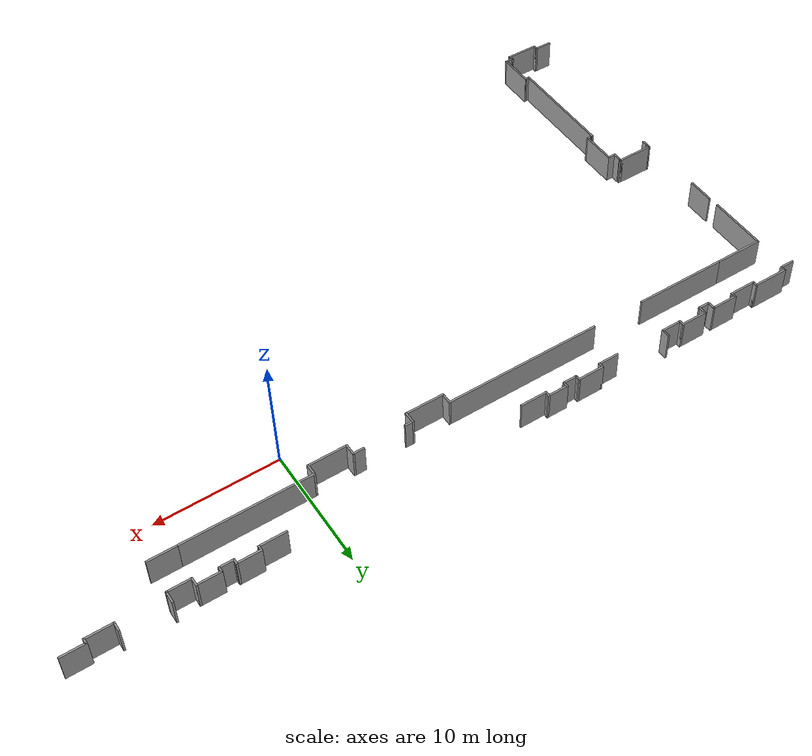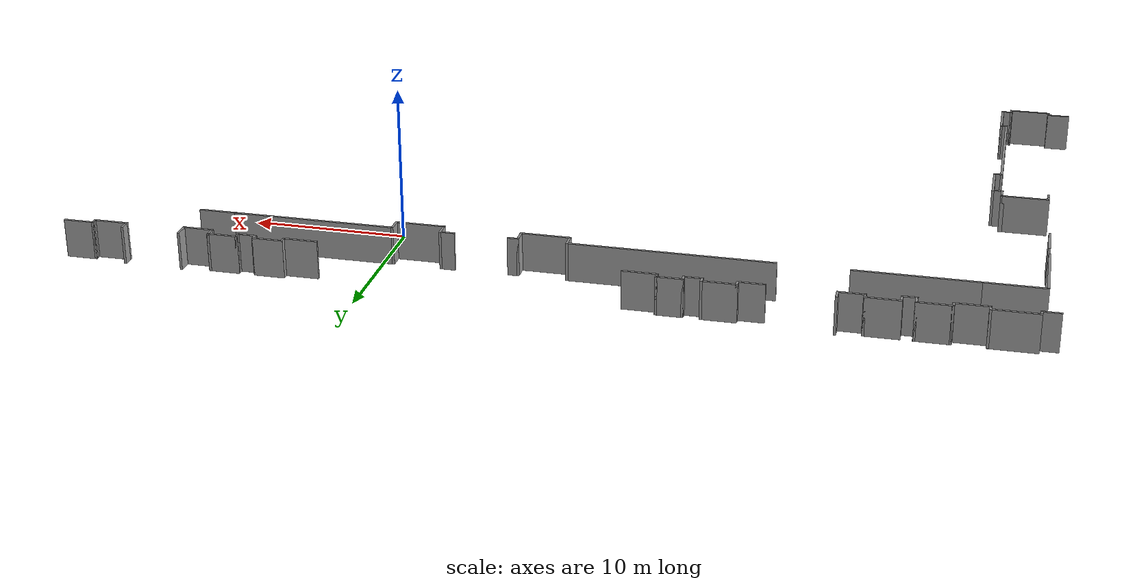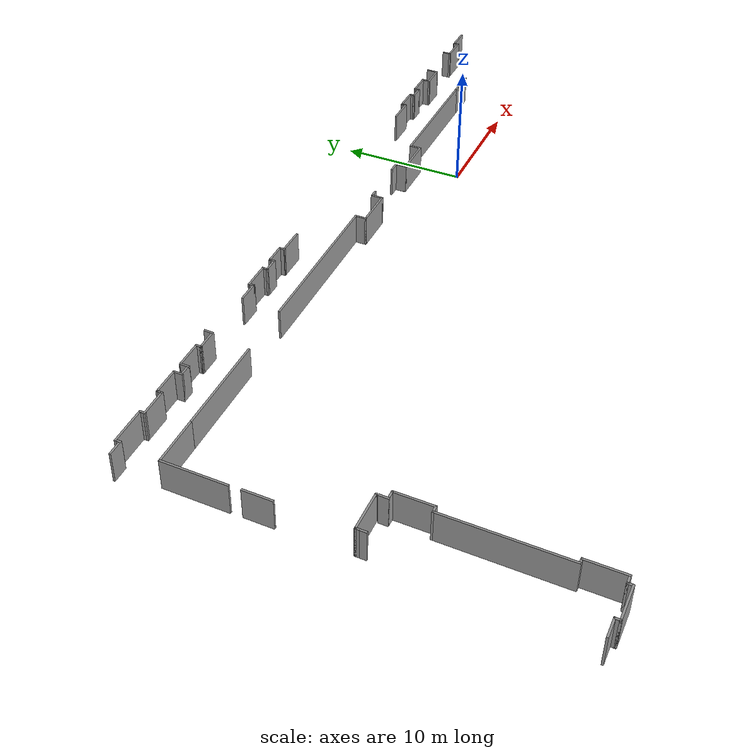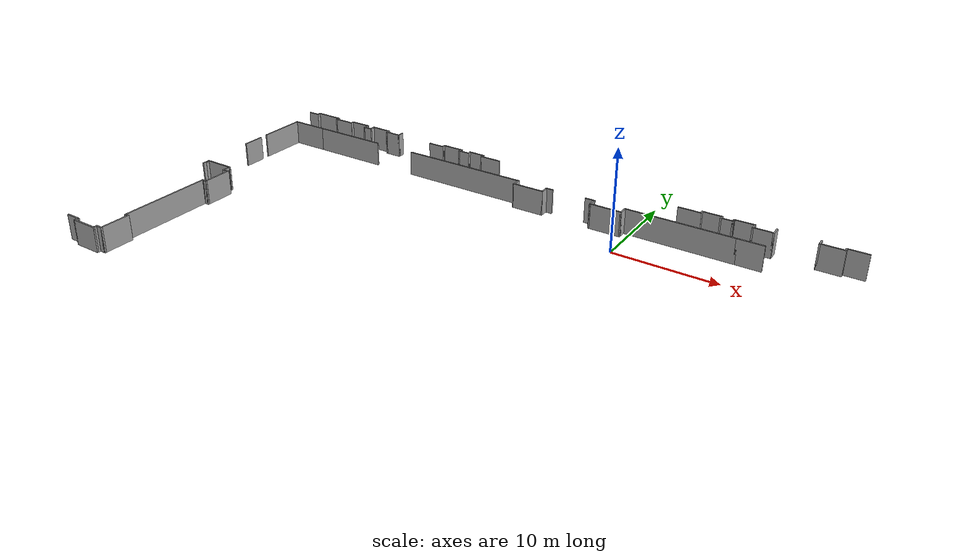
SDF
<sdf version="1.7">
 <model name="Building_1">
  <pose>-6.53713 -6.30976 0 0 -0 0</pose>
  <link name="Wall_0">
   <collision name="Wall_0_Collision">
    <geometry><box><size>0.75 0.15 2.5</size></box></geometry>
    <pose>0 0 1.25 0 -0 0</pose>
   </collision>
   <visual name="Wall_0_Visual">
    <pose>0 0 1.25 0 -0 0</pose>
    <geometry><box><size>0.75 0.15 2.5</size></box></geometry>
    <material>
     <script><uri>file://media/materials/scripts/gazebo.material</uri><name>Gazebo/Grey</name></script>
     <ambient>1 1 1 1</ambient>
    </material>
    <meta><layer>0</layer></meta>
   </visual>
   <pose>-30.9211 -3.55801 0 0 -0 -1.5708</pose>
  </link>
  <link name="Wall_1">
   <collision name="Wall_1_Collision">
    <geometry><box><size>0.75 0.15 2.5</size></box></geometry>
    <pose>0 0 1.25 0 -0 0</pose>
   </collision>
   <visual name="Wall_1_Visual">
    <pose>0 0 1.25 0 -0 0</pose>
    <geometry><box><size>0.75 0.15 2.5</size></box></geometry>
    <material>
     <script><uri>file://media/materials/scripts/gazebo.material</uri><name>Gazebo/Grey</name></script>
     <ambient>1 1 1 1</ambient>
    </material>
    <meta><layer>0</layer></meta>
   </visual>
   <pose>-30.6211 -3.85801 0 0 -0 0</pose>
  </link>
  <link name="Wall_10">
   <collision name="Wall_10_Collision">
    <geometry><box><size>2.75 0.15 2.5</size></box></geometry>
    <pose>0 0 1.25 0 -0 0</pose>
   </collision>
   <visual name="Wall_10_Visual">
    <pose>0 0 1.25 0 -0 0</pose>
    <geometry><box><size>2.75 0.15 2.5</size></box></geometry>
    <material>
     <script><uri>file://media/materials/scripts/gazebo.material</uri><name>Gazebo/Grey</name></script>
     <ambient>1 1 1 1</ambient>
    </material>
    <meta><layer>0</layer></meta>
   </visual>
   <pose>-32.3211 -19.008 0 0 -0 3.14159</pose>
  </link>
  <link name="Wall_11">
   <collision name="Wall_11_Collision">
    <geometry><box><size>0.5 0.15 2.5</size></box></geometry>
    <pose>0 0 1.25 0 -0 0</pose>
   </collision>
   <visual name="Wall_11_Visual">
    <pose>0 0 1.25 0 -0 0</pose>
    <geometry><box><size>0.5 0.15 2.5</size></box></geometry>
    <material>
     <script><uri>file://media/materials/scripts/gazebo.material</uri><name>Gazebo/Grey</name></script>
     <ambient>1 1 1 1</ambient>
    </material>
    <meta><layer>0</layer></meta>
   </visual>
   <pose>-33.6211 -18.833 0 0 -0 1.5708</pose>
  </link>
  <link name="Wall_12">
   <collision name="Wall_12_Collision">
    <geometry><box><size>1.5 0.15 2.5</size></box></geometry>
    <pose>0 0 1.25 0 -0 0</pose>
   </collision>
   <visual name="Wall_12_Visual">
    <pose>0 0 1.25 0 -0 0</pose>
    <geometry><box><size>1.5 0.15 2.5</size></box></geometry>
    <material>
     <script><uri>file://media/materials/scripts/gazebo.material</uri><name>Gazebo/Grey</name></script>
     <ambient>1 1 1 1</ambient>
    </material>
    <meta><layer>0</layer></meta>
   </visual>
   <pose>-34.2961 -18.658 0 0 -0 3.14159</pose>
  </link>
  <link name="Wall_152">
   <collision name="Wall_152_Collision">
    <geometry><box><size>2 0.15 2.5</size></box></geometry>
    <pose>0 0 1.25 0 -0 0</pose>
   </collision>
   <visual name="Wall_152_Visual">
    <pose>0 0 1.25 0 -0 0</pose>
    <geometry><box><size>2 0.15 2.5</size></box></geometry>
    <material>
     <script><uri>file://media/materials/scripts/gazebo.material</uri><name>Gazebo/Grey</name></script>
     <ambient>1 1 1 1</ambient>
    </material>
    <meta><layer>0</layer></meta>
   </visual>
   <pose>25.3389 13.7249 0 0 -0 3.14159</pose>
  </link>
  <link name="Wall_153">
   <collision name="Wall_153_Collision">
    <geometry><box><size>0.5 0.15 2.5</size></box></geometry>
    <pose>0 0 1.25 0 -0 0</pose>
   </collision>
   <visual name="Wall_153_Visual">
    <pose>0 0 1.25 0 -0 0</pose>
    <geometry><box><size>0.5 0.15 2.5</size></box></geometry>
    <material>
     <script><uri>file://media/materials/scripts/gazebo.material</uri><name>Gazebo/Grey</name></script>
     <ambient>1 1 1 1</ambient>
    </material>
    <meta><layer>0</layer></meta>
   </visual>
   <pose>24.4139 13.5499 0 0 -0 -1.5708</pose>
  </link>
  <link name="Wall_154">
   <collision name="Wall_154_Collision">
    <geometry><box><size>2.25 0.15 2.5</size></box></geometry>
    <pose>0 0 1.25 0 -0 0</pose>
   </collision>
   <visual name="Wall_154_Visual">
    <pose>0 0 1.25 0 -0 0</pose>
    <geometry><box><size>2.25 0.15 2.5</size></box></geometry>
    <material>
     <script><uri>file://media/materials/scripts/gazebo.material</uri><name>Gazebo/Grey</name></script>
     <ambient>1 1 1 1</ambient>
    </material>
    <meta><layer>0</layer></meta>
   </visual>
   <pose>23.3639 13.3749 0 0 -0 3.14159</pose>
  </link>
  <link name="Wall_155">
   <collision name="Wall_155_Collision">
    <geometry><box><size>0.75 0.15 2.5</size></box></geometry>
    <pose>0 0 1.25 0 -0 0</pose>
   </collision>
   <visual name="Wall_155_Visual">
    <pose>0 0 1.25 0 -0 0</pose>
    <geometry><box><size>0.75 0.15 2.5</size></box></geometry>
    <material>
     <script><uri>file://media/materials/scripts/gazebo.material</uri><name>Gazebo/Grey</name></script>
     <ambient>1 1 1 1</ambient>
    </material>
    <meta><layer>0</layer></meta>
   </visual>
   <pose>22.3139 13.6749 0 0 -0 1.5708</pose>
  </link>
  <link name="Wall_157">
   <collision name="Wall_157_Collision">
    <geometry><box><size>1 0.15 2.5</size></box></geometry>
    <pose>0 0 1.25 0 -0 0</pose>
   </collision>
   <visual name="Wall_157_Visual">
    <pose>0 0 1.25 0 -0 0</pose>
    <geometry><box><size>1 0.15 2.5</size></box></geometry>
    <material>
     <script><uri>file://media/materials/scripts/gazebo.material</uri><name>Gazebo/Grey</name></script>
     <ambient>1 1 1 1</ambient>
    </material>
    <meta><layer>0</layer></meta>
   </visual>
   <pose>18.5409 13.6008 0 0 -0 -1.5708</pose>
  </link>
  <link name="Wall_158">
   <collision name="Wall_158_Collision">
    <geometry><box><size>2 0.15 2.5</size></box></geometry>
    <pose>0 0 1.25 0 -0 0</pose>
   </collision>
   <visual name="Wall_158_Visual">
    <pose>0 0 1.25 0 -0 0</pose>
    <geometry><box><size>2 0.15 2.5</size></box></geometry>
    <material>
     <script><uri>file://media/materials/scripts/gazebo.material</uri><name>Gazebo/Grey</name></script>
     <ambient>1 1 1 1</ambient>
    </material>
    <meta><layer>0</layer></meta>
   </visual>
   <pose>17.6159 13.1758 0 0 -0 3.14159</pose>
  </link>
  <link name="Wall_159">
   <collision name="Wall_159_Collision">
    <geometry><box><size>0.75 0.15 2.5</size></box></geometry>
    <pose>0 0 1.25 0 -0 0</pose>
   </collision>
   <visual name="Wall_159_Visual">
    <pose>0 0 1.25 0 -0 0</pose>
    <geometry><box><size>0.75 0.15 2.5</size></box></geometry>
    <material>
     <script><uri>file://media/materials/scripts/gazebo.material</uri><name>Gazebo/Grey</name></script>
     <ambient>1 1 1 1</ambient>
    </material>
    <meta><layer>0</layer></meta>
   </visual>
   <pose>16.6909 13.4758 0 0 -0 1.5708</pose>
  </link>
  <link name="Wall_160">
   <collision name="Wall_160_Collision">
    <geometry><box><size>2 0.15 2.5</size></box></geometry>
    <pose>0 0 1.25 0 -0 0</pose>
   </collision>
   <visual name="Wall_160_Visual">
    <pose>0 0 1.25 0 -0 0</pose>
    <geometry><box><size>2 0.15 2.5</size></box></geometry>
    <material>
     <script><uri>file://media/materials/scripts/gazebo.material</uri><name>Gazebo/Grey</name></script>
     <ambient>1 1 1 1</ambient>
    </material>
    <meta><layer>0</layer></meta>
   </visual>
   <pose>15.7659 13.7758 0 0 -0 3.14159</pose>
  </link>
  <link name="Wall_161">
   <collision name="Wall_161_Collision">
    <geometry><box><size>0.5 0.15 2.5</size></box></geometry>
    <pose>0 0 1.25 0 -0 0</pose>
   </collision>
   <visual name="Wall_161_Visual">
    <pose>0 0 1.25 0 -0 0</pose>
    <geometry><box><size>0.5 0.15 2.5</size></box></geometry>
    <material>
     <script><uri>file://media/materials/scripts/gazebo.material</uri><name>Gazebo/Grey</name></script>
     <ambient>1 1 1 1</ambient>
    </material>
    <meta><layer>0</layer></meta>
   </visual>
   <pose>14.8409 13.6008 0 0 -0 -1.5708</pose>
  </link>
  <link name="Wall_162">
   <collision name="Wall_162_Collision">
    <geometry><box><size>1.25 0.15 2.5</size></box></geometry>
    <pose>0 0 1.25 0 -0 0</pose>
   </collision>
   <visual name="Wall_162_Visual">
    <pose>0 0 1.25 0 -0 0</pose>
    <geometry><box><size>1.25 0.15 2.5</size></box></geometry>
    <material>
     <script><uri>file://media/materials/scripts/gazebo.material</uri><name>Gazebo/Grey</name></script>
     <ambient>1 1 1 1</ambient>
    </material>
    <meta><layer>0</layer></meta>
   </visual>
   <pose>14.2909 13.4258 0 0 -0 3.14159</pose>
  </link>
  <link name="Wall_163">
   <collision name="Wall_163_Collision">
    <geometry><box><size>0.5 0.15 2.5</size></box></geometry>
    <pose>0 0 1.25 0 -0 0</pose>
   </collision>
   <visual name="Wall_163_Visual">
    <pose>0 0 1.25 0 -0 0</pose>
    <geometry><box><size>0.5 0.15 2.5</size></box></geometry>
    <material>
     <script><uri>file://media/materials/scripts/gazebo.material</uri><name>Gazebo/Grey</name></script>
     <ambient>1 1 1 1</ambient>
    </material>
    <meta><layer>0</layer></meta>
   </visual>
   <pose>13.7409 13.6008 0 0 -0 1.5708</pose>
  </link>
  <link name="Wall_164">
   <collision name="Wall_164_Collision">
    <geometry><box><size>2 0.15 2.5</size></box></geometry>
    <pose>0 0 1.25 0 -0 0</pose>
   </collision>
   <visual name="Wall_164_Visual">
    <pose>0 0 1.25 0 -0 0</pose>
    <geometry><box><size>2 0.15 2.5</size></box></geometry>
    <material>
     <script><uri>file://media/materials/scripts/gazebo.material</uri><name>Gazebo/Grey</name></script>
     <ambient>1 1 1 1</ambient>
    </material>
    <meta><layer>0</layer></meta>
   </visual>
   <pose>12.8159 13.7758 0 0 -0 3.14159</pose>
  </link>
  <link name="Wall_165">
   <collision name="Wall_165_Collision">
    <geometry><box><size>0.5 0.15 2.5</size></box></geometry>
    <pose>0 0 1.25 0 -0 0</pose>
   </collision>
   <visual name="Wall_165_Visual">
    <pose>0 0 1.25 0 -0 0</pose>
    <geometry><box><size>0.5 0.15 2.5</size></box></geometry>
    <material>
     <script><uri>file://media/materials/scripts/gazebo.material</uri><name>Gazebo/Grey</name></script>
     <ambient>1 1 1 1</ambient>
    </material>
    <meta><layer>0</layer></meta>
   </visual>
   <pose>11.8909 13.6008 0 0 -0 -1.5708</pose>
  </link>
  <link name="Wall_166">
   <collision name="Wall_166_Collision">
    <geometry><box><size>2.25 0.15 2.5</size></box></geometry>
    <pose>0 0 1.25 0 -0 0</pose>
   </collision>
   <visual name="Wall_166_Visual">
    <pose>0 0 1.25 0 -0 0</pose>
    <geometry><box><size>2.25 0.15 2.5</size></box></geometry>
    <material>
     <script><uri>file://media/materials/scripts/gazebo.material</uri><name>Gazebo/Grey</name></script>
     <ambient>1 1 1 1</ambient>
    </material>
    <meta><layer>0</layer></meta>
   </visual>
   <pose>10.8409 13.4258 0 0 -0 3.14159</pose>
  </link>
  <link name="Wall_183">
   <collision name="Wall_183_Collision">
    <geometry><box><size>2.25 0.15 2.5</size></box></geometry>
    <pose>0 0 1.25 0 -0 0</pose>
   </collision>
   <visual name="Wall_183_Visual">
    <pose>0 0 1.25 0 -0 0</pose>
    <geometry><box><size>2.25 0.15 2.5</size></box></geometry>
    <material>
     <script><uri>file://media/materials/scripts/gazebo.material</uri><name>Gazebo/Grey</name></script>
     <ambient>1 1 1 1</ambient>
    </material>
    <meta><layer>0</layer></meta>
   </visual>
   <pose>-10.4472 13.3899 0 0 -0 3.14159</pose>
  </link>
  <link name="Wall_184">
   <collision name="Wall_184_Collision">
    <geometry><box><size>0.5 0.15 2.5</size></box></geometry>
    <pose>0 0 1.25 0 -0 0</pose>
   </collision>
   <visual name="Wall_184_Visual">
    <pose>0 0 1.25 0 -0 0</pose>
    <geometry><box><size>0.5 0.15 2.5</size></box></geometry>
    <material>
     <script><uri>file://media/materials/scripts/gazebo.material</uri><name>Gazebo/Grey</name></script>
     <ambient>1 1 1 1</ambient>
    </material>
    <meta><layer>0</layer></meta>
   </visual>
   <pose>-11.4972 13.5649 0 0 -0 1.5708</pose>
  </link>
  <link name="Wall_185">
   <collision name="Wall_185_Collision">
    <geometry><box><size>1.75 0.15 2.5</size></box></geometry>
    <pose>0 0 1.25 0 -0 0</pose>
   </collision>
   <visual name="Wall_185_Visual">
    <pose>0 0 1.25 0 -0 0</pose>
    <geometry><box><size>1.75 0.15 2.5</size></box></geometry>
    <material>
     <script><uri>file://media/materials/scripts/gazebo.material</uri><name>Gazebo/Grey</name></script>
     <ambient>1 1 1 1</ambient>
    </material>
    <meta><layer>0</layer></meta>
   </visual>
   <pose>-12.2972 13.7399 0 0 -0 3.14159</pose>
  </link>
  <link name="Wall_186">
   <collision name="Wall_186_Collision">
    <geometry><box><size>0.5 0.15 2.5</size></box></geometry>
    <pose>0 0 1.25 0 -0 0</pose>
   </collision>
   <visual name="Wall_186_Visual">
    <pose>0 0 1.25 0 -0 0</pose>
    <geometry><box><size>0.5 0.15 2.5</size></box></geometry>
    <material>
     <script><uri>file://media/materials/scripts/gazebo.material</uri><name>Gazebo/Grey</name></script>
     <ambient>1 1 1 1</ambient>
    </material>
    <meta><layer>0</layer></meta>
   </visual>
   <pose>-13.0972 13.5649 0 0 -0 -1.5708</pose>
  </link>
  <link name="Wall_187">
   <collision name="Wall_187_Collision">
    <geometry><box><size>1.25 0.15 2.5</size></box></geometry>
    <pose>0 0 1.25 0 -0 0</pose>
   </collision>
   <visual name="Wall_187_Visual">
    <pose>0 0 1.25 0 -0 0</pose>
    <geometry><box><size>1.25 0.15 2.5</size></box></geometry>
    <material>
     <script><uri>file://media/materials/scripts/gazebo.material</uri><name>Gazebo/Grey</name></script>
     <ambient>1 1 1 1</ambient>
    </material>
    <meta><layer>0</layer></meta>
   </visual>
   <pose>-13.6472 13.3899 0 0 -0 3.14159</pose>
  </link>
  <link name="Wall_188">
   <collision name="Wall_188_Collision">
    <geometry><box><size>0.5 0.15 2.5</size></box></geometry>
    <pose>0 0 1.25 0 -0 0</pose>
   </collision>
   <visual name="Wall_188_Visual">
    <pose>0 0 1.25 0 -0 0</pose>
    <geometry><box><size>0.5 0.15 2.5</size></box></geometry>
    <material>
     <script><uri>file://media/materials/scripts/gazebo.material</uri><name>Gazebo/Grey</name></script>
     <ambient>1 1 1 1</ambient>
    </material>
    <meta><layer>0</layer></meta>
   </visual>
   <pose>-14.1972 13.5649 0 0 -0 1.5708</pose>
  </link>
  <link name="Wall_189">
   <collision name="Wall_189_Collision">
    <geometry><box><size>2.25 0.15 2.5</size></box></geometry>
    <pose>0 0 1.25 0 -0 0</pose>
   </collision>
   <visual name="Wall_189_Visual">
    <pose>0 0 1.25 0 -0 0</pose>
    <geometry><box><size>2.25 0.15 2.5</size></box></geometry>
    <material>
     <script><uri>file://media/materials/scripts/gazebo.material</uri><name>Gazebo/Grey</name></script>
     <ambient>1 1 1 1</ambient>
    </material>
    <meta><layer>0</layer></meta>
   </visual>
   <pose>-15.2472 13.7399 0 0 -0 3.14159</pose>
  </link>
  <link name="Wall_190">
   <collision name="Wall_190_Collision">
    <geometry><box><size>0.5 0.15 2.5</size></box></geometry>
    <pose>0 0 1.25 0 -0 0</pose>
   </collision>
   <visual name="Wall_190_Visual">
    <pose>0 0 1.25 0 -0 0</pose>
    <geometry><box><size>0.5 0.15 2.5</size></box></geometry>
    <material>
     <script><uri>file://media/materials/scripts/gazebo.material</uri><name>Gazebo/Grey</name></script>
     <ambient>1 1 1 1</ambient>
    </material>
    <meta><layer>0</layer></meta>
   </visual>
   <pose>-16.2972 13.5649 0 0 -0 -1.5708</pose>
  </link>
  <link name="Wall_191">
   <collision name="Wall_191_Collision">
    <geometry><box><size>1.75 0.15 2.5</size></box></geometry>
    <pose>0 0 1.25 0 -0 0</pose>
   </collision>
   <visual name="Wall_191_Visual">
    <pose>0 0 1.25 0 -0 0</pose>
    <geometry><box><size>1.75 0.15 2.5</size></box></geometry>
    <material>
     <script><uri>file://media/materials/scripts/gazebo.material</uri><name>Gazebo/Grey</name></script>
     <ambient>1 1 1 1</ambient>
    </material>
    <meta><layer>0</layer></meta>
   </visual>
   <pose>-17.0972 13.3899 0 0 -0 3.14159</pose>
  </link>
  <link name="Wall_193">
   <collision name="Wall_193_Collision">
    <geometry><box><size>0.75 0.15 2.5</size></box></geometry>
    <pose>0 0 1.25 0 -0 0</pose>
   </collision>
   <visual name="Wall_193_Visual">
    <pose>0 0 1.25 0 -0 0</pose>
    <geometry><box><size>0.75 0.15 2.5</size></box></geometry>
    <material>
     <script><uri>file://media/materials/scripts/gazebo.material</uri><name>Gazebo/Grey</name></script>
     <ambient>1 1 1 1</ambient>
    </material>
    <meta><layer>0</layer></meta>
   </visual>
   <pose>-22.1693 13.7335 0 0 -0 -1.5708</pose>
  </link>
  <link name="Wall_194">
   <collision name="Wall_194_Collision">
    <geometry><box><size>1.75 0.15 2.5</size></box></geometry>
    <pose>0 0 1.25 0 -0 0</pose>
   </collision>
   <visual name="Wall_194_Visual">
    <pose>0 0 1.25 0 -0 0</pose>
    <geometry><box><size>1.75 0.15 2.5</size></box></geometry>
    <material>
     <script><uri>file://media/materials/scripts/gazebo.material</uri><name>Gazebo/Grey</name></script>
     <ambient>1 1 1 1</ambient>
    </material>
    <meta><layer>0</layer></meta>
   </visual>
   <pose>-22.9693 13.4335 0 0 -0 3.14159</pose>
  </link>
  <link name="Wall_195">
   <collision name="Wall_195_Collision">
    <geometry><box><size>0.5 0.15 2.5</size></box></geometry>
    <pose>0 0 1.25 0 -0 0</pose>
   </collision>
   <visual name="Wall_195_Visual">
    <pose>0 0 1.25 0 -0 0</pose>
    <geometry><box><size>0.5 0.15 2.5</size></box></geometry>
    <material>
     <script><uri>file://media/materials/scripts/gazebo.material</uri><name>Gazebo/Grey</name></script>
     <ambient>1 1 1 1</ambient>
    </material>
    <meta><layer>0</layer></meta>
   </visual>
   <pose>-23.7693 13.6085 0 0 -0 1.5708</pose>
  </link>
  <link name="Wall_196">
   <collision name="Wall_196_Collision">
    <geometry><box><size>2.25 0.15 2.5</size></box></geometry>
    <pose>0 0 1.25 0 -0 0</pose>
   </collision>
   <visual name="Wall_196_Visual">
    <pose>0 0 1.25 0 -0 0</pose>
    <geometry><box><size>2.25 0.15 2.5</size></box></geometry>
    <material>
     <script><uri>file://media/materials/scripts/gazebo.material</uri><name>Gazebo/Grey</name></script>
     <ambient>1 1 1 1</ambient>
    </material>
    <meta><layer>0</layer></meta>
   </visual>
   <pose>-24.8193 13.7835 0 0 -0 3.14159</pose>
  </link>
  <link name="Wall_197">
   <collision name="Wall_197_Collision">
    <geometry><box><size>0.75 0.15 2.5</size></box></geometry>
    <pose>0 0 1.25 0 -0 0</pose>
   </collision>
   <visual name="Wall_197_Visual">
    <pose>0 0 1.25 0 -0 0</pose>
    <geometry><box><size>0.75 0.15 2.5</size></box></geometry>
    <material>
     <script><uri>file://media/materials/scripts/gazebo.material</uri><name>Gazebo/Grey</name></script>
     <ambient>1 1 1 1</ambient>
    </material>
    <meta><layer>0</layer></meta>
   </visual>
   <pose>-25.8693 13.4835 0 0 -0 -1.5708</pose>
  </link>
  <link name="Wall_198">
   <collision name="Wall_198_Collision">
    <geometry><box><size>1 0.15 2.5</size></box></geometry>
    <pose>0 0 1.25 0 -0 0</pose>
   </collision>
   <visual name="Wall_198_Visual">
    <pose>0 0 1.25 0 -0 0</pose>
    <geometry><box><size>1 0.15 2.5</size></box></geometry>
    <material>
     <script><uri>file://media/materials/scripts/gazebo.material</uri><name>Gazebo/Grey</name></script>
     <ambient>1 1 1 1</ambient>
    </material>
    <meta><layer>0</layer></meta>
   </visual>
   <pose>-26.2943 13.1835 0 0 -0 3.14159</pose>
  </link>
  <link name="Wall_199">
   <collision name="Wall_199_Collision">
    <geometry><box><size>0.75 0.15 2.5</size></box></geometry>
    <pose>0 0 1.25 0 -0 0</pose>
   </collision>
   <visual name="Wall_199_Visual">
    <pose>0 0 1.25 0 -0 0</pose>
    <geometry><box><size>0.75 0.15 2.5</size></box></geometry>
    <material>
     <script><uri>file://media/materials/scripts/gazebo.material</uri><name>Gazebo/Grey</name></script>
     <ambient>1 1 1 1</ambient>
    </material>
    <meta><layer>0</layer></meta>
   </visual>
   <pose>-26.7193 13.4835 0 0 -0 1.5708</pose>
  </link>
  <link name="Wall_2">
   <collision name="Wall_2_Collision">
    <geometry><box><size>3 0.15 2.5</size></box></geometry>
    <pose>0 0 1.25 0 -0 0</pose>
   </collision>
   <visual name="Wall_2_Visual">
    <pose>0 0 1.25 0 -0 0</pose>
    <geometry><box><size>3 0.15 2.5</size></box></geometry>
    <material>
     <script><uri>file://media/materials/scripts/gazebo.material</uri><name>Gazebo/Grey</name></script>
     <ambient>1 1 1 1</ambient>
    </material>
    <meta><layer>0</layer></meta>
   </visual>
   <pose>-30.3211 -5.28301 0 0 -0 -1.5708</pose>
  </link>
  <link name="Wall_200">
   <collision name="Wall_200_Collision">
    <geometry><box><size>2.25 0.15 2.5</size></box></geometry>
    <pose>0 0 1.25 0 -0 0</pose>
   </collision>
   <visual name="Wall_200_Visual">
    <pose>0 0 1.25 0 -0 0</pose>
    <geometry><box><size>2.25 0.15 2.5</size></box></geometry>
    <material>
     <script><uri>file://media/materials/scripts/gazebo.material</uri><name>Gazebo/Grey</name></script>
     <ambient>1 1 1 1</ambient>
    </material>
    <meta><layer>0</layer></meta>
   </visual>
   <pose>-27.7693 13.7835 0 0 -0 3.14159</pose>
  </link>
  <link name="Wall_201">
   <collision name="Wall_201_Collision">
    <geometry><box><size>0.5 0.15 2.5</size></box></geometry>
    <pose>0 0 1.25 0 -0 0</pose>
   </collision>
   <visual name="Wall_201_Visual">
    <pose>0 0 1.25 0 -0 0</pose>
    <geometry><box><size>0.5 0.15 2.5</size></box></geometry>
    <material>
     <script><uri>file://media/materials/scripts/gazebo.material</uri><name>Gazebo/Grey</name></script>
     <ambient>1 1 1 1</ambient>
    </material>
    <meta><layer>0</layer></meta>
   </visual>
   <pose>-28.8193 13.6085 0 0 -0 -1.5708</pose>
  </link>
  <link name="Wall_202">
   <collision name="Wall_202_Collision">
    <geometry><box><size>2.25 0.15 2.5</size></box></geometry>
    <pose>0 0 1.25 0 -0 0</pose>
   </collision>
   <visual name="Wall_202_Visual">
    <pose>0 0 1.25 0 -0 0</pose>
    <geometry><box><size>2.25 0.15 2.5</size></box></geometry>
    <material>
     <script><uri>file://media/materials/scripts/gazebo.material</uri><name>Gazebo/Grey</name></script>
     <ambient>1 1 1 1</ambient>
    </material>
    <meta><layer>0</layer></meta>
   </visual>
   <pose>-29.8693 13.4335 0 0 -0 3.14159</pose>
  </link>
  <link name="Wall_203">
   <collision name="Wall_203_Collision">
    <geometry><box><size>0.5 0.15 2.5</size></box></geometry>
    <pose>0 0 1.25 0 -0 0</pose>
   </collision>
   <visual name="Wall_203_Visual">
    <pose>0 0 1.25 0 -0 0</pose>
    <geometry><box><size>0.5 0.15 2.5</size></box></geometry>
    <material>
     <script><uri>file://media/materials/scripts/gazebo.material</uri><name>Gazebo/Grey</name></script>
     <ambient>1 1 1 1</ambient>
    </material>
    <meta><layer>0</layer></meta>
   </visual>
   <pose>-30.9193 13.6085 0 0 -0 1.5708</pose>
  </link>
  <link name="Wall_204">
   <collision name="Wall_204_Collision">
    <geometry><box><size>3 0.15 2.5</size></box></geometry>
    <pose>0 0 1.25 0 -0 0</pose>
   </collision>
   <visual name="Wall_204_Visual">
    <pose>0 0 1.25 0 -0 0</pose>
    <geometry><box><size>3 0.15 2.5</size></box></geometry>
    <material>
     <script><uri>file://media/materials/scripts/gazebo.material</uri><name>Gazebo/Grey</name></script>
     <ambient>1 1 1 1</ambient>
    </material>
    <meta><layer>0</layer></meta>
   </visual>
   <pose>-32.3443 13.7835 0 0 -0 3.14159</pose>
  </link>
  <link name="Wall_205">
   <collision name="Wall_205_Collision">
    <geometry><box><size>0.5 0.15 2.5</size></box></geometry>
    <pose>0 0 1.25 0 -0 0</pose>
   </collision>
   <visual name="Wall_205_Visual">
    <pose>0 0 1.25 0 -0 0</pose>
    <geometry><box><size>0.5 0.15 2.5</size></box></geometry>
    <material>
     <script><uri>file://media/materials/scripts/gazebo.material</uri><name>Gazebo/Grey</name></script>
     <ambient>1 1 1 1</ambient>
    </material>
    <meta><layer>0</layer></meta>
   </visual>
   <pose>-33.7693 13.6085 0 0 -0 -1.5708</pose>
  </link>
  <link name="Wall_206">
   <collision name="Wall_206_Collision">
    <geometry><box><size>1.25 0.15 2.5</size></box></geometry>
    <pose>0 0 1.25 0 -0 0</pose>
   </collision>
   <visual name="Wall_206_Visual">
    <pose>0 0 1.25 0 -0 0</pose>
    <geometry><box><size>1.25 0.15 2.5</size></box></geometry>
    <material>
     <script><uri>file://media/materials/scripts/gazebo.material</uri><name>Gazebo/Grey</name></script>
     <ambient>1 1 1 1</ambient>
    </material>
    <meta><layer>0</layer></meta>
   </visual>
   <pose>-34.3193 13.4335 0 0 -0 3.14159</pose>
  </link>
  <link name="Wall_3">
   <collision name="Wall_3_Collision">
    <geometry><box><size>0.5 0.15 2.5</size></box></geometry>
    <pose>0 0 1.25 0 -0 0</pose>
   </collision>
   <visual name="Wall_3_Visual">
    <pose>0 0 1.25 0 -0 0</pose>
    <geometry><box><size>0.5 0.15 2.5</size></box></geometry>
    <material>
     <script><uri>file://media/materials/scripts/gazebo.material</uri><name>Gazebo/Grey</name></script>
     <ambient>1 1 1 1</ambient>
    </material>
    <meta><layer>0</layer></meta>
   </visual>
   <pose>-30.4961 -6.70801 0 0 -0 3.14159</pose>
  </link>
  <link name="Wall_31">
   <collision name="Wall_31_Collision">
    <geometry><box><size>0.5 0.15 2.5</size></box></geometry>
    <pose>0 0 1.25 0 -0 0</pose>
   </collision>
   <visual name="Wall_31_Visual">
    <pose>0 0 1.25 0 -0 0</pose>
    <geometry><box><size>0.5 0.15 2.5</size></box></geometry>
    <material>
     <script><uri>file://media/materials/scripts/gazebo.material</uri><name>Gazebo/Grey</name></script>
     <ambient>1 1 1 1</ambient>
    </material>
    <meta><layer>0</layer></meta>
   </visual>
   <pose>-33.8724 -3.56731 0 0 -0 1.5708</pose>
  </link>
  <link name="Wall_32">
   <collision name="Wall_32_Collision">
    <geometry><box><size>0.5 0.15 2.5</size></box></geometry>
    <pose>0 0 1.25 0 -0 0</pose>
   </collision>
   <visual name="Wall_32_Visual">
    <pose>0 0 1.25 0 -0 0</pose>
    <geometry><box><size>0.5 0.15 2.5</size></box></geometry>
    <material>
     <script><uri>file://media/materials/scripts/gazebo.material</uri><name>Gazebo/Grey</name></script>
     <ambient>1 1 1 1</ambient>
    </material>
    <meta><layer>0</layer></meta>
   </visual>
   <pose>-33.8724 -3.21731 0 0 -0 1.5708</pose>
  </link>
  <link name="Wall_33">
   <collision name="Wall_33_Collision">
    <geometry><box><size>3 0.15 2.5</size></box></geometry>
    <pose>0 0 1.25 0 -0 0</pose>
   </collision>
   <visual name="Wall_33_Visual">
    <pose>0 0 1.25 0 -0 0</pose>
    <geometry><box><size>3 0.15 2.5</size></box></geometry>
    <material>
     <script><uri>file://media/materials/scripts/gazebo.material</uri><name>Gazebo/Grey</name></script>
     <ambient>1 1 1 1</ambient>
    </material>
    <meta><layer>0</layer></meta>
   </visual>
   <pose>-32.4474 -3.04231 0 0 -0 0</pose>
  </link>
  <link name="Wall_34">
   <collision name="Wall_34_Collision">
    <geometry><box><size>0.25 0.15 2.5</size></box></geometry>
    <pose>0 0 1.25 0 -0 0</pose>
   </collision>
   <visual name="Wall_34_Visual">
    <pose>0 0 1.25 0 -0 0</pose>
    <geometry><box><size>0.25 0.15 2.5</size></box></geometry>
    <material>
     <script><uri>file://media/materials/scripts/gazebo.material</uri><name>Gazebo/Grey</name></script>
     <ambient>1 1 1 1</ambient>
    </material>
    <meta><layer>0</layer></meta>
   </visual>
   <pose>-30.9724 -3.04231 0 0 -0 0</pose>
  </link>
  <link name="Wall_4">
   <collision name="Wall_4_Collision">
    <geometry><box><size>0.25 0.15 2.5</size></box></geometry>
    <pose>0 0 1.25 0 -0 0</pose>
   </collision>
   <visual name="Wall_4_Visual">
    <pose>0 0 1.25 0 -0 0</pose>
    <geometry><box><size>0.25 0.15 2.5</size></box></geometry>
    <material>
     <script><uri>file://media/materials/scripts/gazebo.material</uri><name>Gazebo/Grey</name></script>
     <ambient>1 1 1 1</ambient>
    </material>
    <meta><layer>0</layer></meta>
   </visual>
   <pose>-30.7211 -6.70801 0 0 -0 3.14159</pose>
  </link>
  <link name="Wall_5">
   <collision name="Wall_5_Collision">
    <geometry><box><size>9.25 0.15 2.5</size></box></geometry>
    <pose>0 0 1.25 0 -0 0</pose>
   </collision>
   <visual name="Wall_5_Visual">
    <pose>0 0 1.25 0 -0 0</pose>
    <geometry><box><size>9.25 0.15 2.5</size></box></geometry>
    <material>
     <script><uri>file://media/materials/scripts/gazebo.material</uri><name>Gazebo/Grey</name></script>
     <ambient>1 1 1 1</ambient>
    </material>
    <meta><layer>0</layer></meta>
   </visual>
   <pose>-30.7711 -11.258 0 0 -0 -1.5708</pose>
  </link>
  <link name="Wall_54">
   <collision name="Wall_54_Collision">
    <geometry><box><size>2.25 0.15 2.5</size></box></geometry>
    <pose>0 0 1.25 0 -0 0</pose>
   </collision>
   <visual name="Wall_54_Visual">
    <pose>0 0 1.25 0 -0 0</pose>
    <geometry><box><size>2.25 0.15 2.5</size></box></geometry>
    <material>
     <script><uri>file://media/materials/scripts/gazebo.material</uri><name>Gazebo/Grey</name></script>
     <ambient>1 1 1 1</ambient>
    </material>
    <meta><layer>0</layer></meta>
   </visual>
   <pose>-34.0486 3.4258 0 0 -0 1.5708</pose>
  </link>
  <link name="Wall_56">
   <collision name="Wall_56_Collision">
    <geometry><box><size>5 0.15 2.5</size></box></geometry>
    <pose>0 0 1.25 0 -0 0</pose>
   </collision>
   <visual name="Wall_56_Visual">
    <pose>0 0 1.25 0 -0 0</pose>
    <geometry><box><size>5 0.15 2.5</size></box></geometry>
    <material>
     <script><uri>file://media/materials/scripts/gazebo.material</uri><name>Gazebo/Grey</name></script>
     <ambient>1 1 1 1</ambient>
    </material>
    <meta><layer>0</layer></meta>
   </visual>
   <pose>-34.0961 7.87758 0 0 -0 1.5708</pose>
  </link>
  <link name="Wall_57">
   <collision name="Wall_57_Collision">
    <geometry><box><size>4 0.15 2.5</size></box></geometry>
    <pose>0 0 1.25 0 -0 0</pose>
   </collision>
   <visual name="Wall_57_Visual">
    <pose>0 0 1.25 0 -0 0</pose>
    <geometry><box><size>4 0.15 2.5</size></box></geometry>
    <material>
     <script><uri>file://media/materials/scripts/gazebo.material</uri><name>Gazebo/Grey</name></script>
     <ambient>1 1 1 1</ambient>
    </material>
    <meta><layer>0</layer></meta>
   </visual>
   <pose>-32.1711 10.3026 0 0 -0 0</pose>
  </link>
  <link name="Wall_58">
   <collision name="Wall_58_Collision">
    <geometry><box><size>7.75 0.15 2.5</size></box></geometry>
    <pose>0 0 1.25 0 -0 0</pose>
   </collision>
   <visual name="Wall_58_Visual">
    <pose>0 0 1.25 0 -0 0</pose>
    <geometry><box><size>7.75 0.15 2.5</size></box></geometry>
    <material>
     <script><uri>file://media/materials/scripts/gazebo.material</uri><name>Gazebo/Grey</name></script>
     <ambient>1 1 1 1</ambient>
    </material>
    <meta><layer>0</layer></meta>
   </visual>
   <pose>-26.4461 10.3026 0 0 -0 0</pose>
  </link>
  <link name="Wall_6">
   <collision name="Wall_6_Collision">
    <geometry><box><size>0.5 0.15 2.5</size></box></geometry>
    <pose>0 0 1.25 0 -0 0</pose>
   </collision>
   <visual name="Wall_6_Visual">
    <pose>0 0 1.25 0 -0 0</pose>
    <geometry><box><size>0.5 0.15 2.5</size></box></geometry>
    <material>
     <script><uri>file://media/materials/scripts/gazebo.material</uri><name>Gazebo/Grey</name></script>
     <ambient>1 1 1 1</ambient>
    </material>
    <meta><layer>0</layer></meta>
   </visual>
   <pose>-30.5961 -15.808 0 0 -0 0</pose>
  </link>
  <link name="Wall_60">
   <collision name="Wall_60_Collision">
    <geometry><box><size>13 0.15 2.5</size></box></geometry>
    <pose>0 0 1.25 0 -0 0</pose>
   </collision>
   <visual name="Wall_60_Visual">
    <pose>0 0 1.25 0 -0 0</pose>
    <geometry><box><size>13 0.15 2.5</size></box></geometry>
    <material>
     <script><uri>file://media/materials/scripts/gazebo.material</uri><name>Gazebo/Grey</name></script>
     <ambient>1 1 1 1</ambient>
    </material>
    <meta><layer>0</layer></meta>
   </visual>
   <pose>-11.6954 10.2967 0 0 -0 0</pose>
  </link>
  <link name="Wall_61">
   <collision name="Wall_61_Collision">
    <geometry><box><size>1 0.15 2.5</size></box></geometry>
    <pose>0 0 1.25 0 -0 0</pose>
   </collision>
   <visual name="Wall_61_Visual">
    <pose>0 0 1.25 0 -0 0</pose>
    <geometry><box><size>1 0.15 2.5</size></box></geometry>
    <material>
     <script><uri>file://media/materials/scripts/gazebo.material</uri><name>Gazebo/Grey</name></script>
     <ambient>1 1 1 1</ambient>
    </material>
    <meta><layer>0</layer></meta>
   </visual>
   <pose>-5.27039 9.87171 0 0 -0 -1.5708</pose>
  </link>
  <link name="Wall_62">
   <collision name="Wall_62_Collision">
    <geometry><box><size>3.25 0.15 2.5</size></box></geometry>
    <pose>0 0 1.25 0 -0 0</pose>
   </collision>
   <visual name="Wall_62_Visual">
    <pose>0 0 1.25 0 -0 0</pose>
    <geometry><box><size>3.25 0.15 2.5</size></box></geometry>
    <material>
     <script><uri>file://media/materials/scripts/gazebo.material</uri><name>Gazebo/Grey</name></script>
     <ambient>1 1 1 1</ambient>
    </material>
    <meta><layer>0</layer></meta>
   </visual>
   <pose>-3.72039 9.44671 0 0 -0 0</pose>
  </link>
  <link name="Wall_63">
   <collision name="Wall_63_Collision">
    <geometry><box><size>1 0.15 2.5</size></box></geometry>
    <pose>0 0 1.25 0 -0 0</pose>
   </collision>
   <visual name="Wall_63_Visual">
    <pose>0 0 1.25 0 -0 0</pose>
    <geometry><box><size>1 0.15 2.5</size></box></geometry>
    <material>
     <script><uri>file://media/materials/scripts/gazebo.material</uri><name>Gazebo/Grey</name></script>
     <ambient>1 1 1 1</ambient>
    </material>
    <meta><layer>0</layer></meta>
   </visual>
   <pose>-2.17039 9.87171 0 0 -0 1.5708</pose>
  </link>
  <link name="Wall_64">
   <collision name="Wall_64_Collision">
    <geometry><box><size>0.75 0.15 2.5</size></box></geometry>
    <pose>0 0 1.25 0 -0 0</pose>
   </collision>
   <visual name="Wall_64_Visual">
    <pose>0 0 1.25 0 -0 0</pose>
    <geometry><box><size>0.75 0.15 2.5</size></box></geometry>
    <material>
     <script><uri>file://media/materials/scripts/gazebo.material</uri><name>Gazebo/Grey</name></script>
     <ambient>1 1 1 1</ambient>
    </material>
    <meta><layer>0</layer></meta>
   </visual>
   <pose>-1.87038 10.2967 0 0 -0 0</pose>
  </link>
  <link name="Wall_68">
   <collision name="Wall_68_Collision">
    <geometry><box><size>1 0.15 2.5</size></box></geometry>
    <pose>0 0 1.25 0 -0 0</pose>
   </collision>
   <visual name="Wall_68_Visual">
    <pose>0 0 1.25 0 -0 0</pose>
    <geometry><box><size>1 0.15 2.5</size></box></geometry>
    <material>
     <script><uri>file://media/materials/scripts/gazebo.material</uri><name>Gazebo/Grey</name></script>
     <ambient>1 1 1 1</ambient>
    </material>
    <meta><layer>0</layer></meta>
   </visual>
   <pose>2.36117 10.3765 0 0 -0 0</pose>
  </link>
  <link name="Wall_69">
   <collision name="Wall_69_Collision">
    <geometry><box><size>1 0.15 2.5</size></box></geometry>
    <pose>0 0 1.25 0 -0 0</pose>
   </collision>
   <visual name="Wall_69_Visual">
    <pose>0 0 1.25 0 -0 0</pose>
    <geometry><box><size>1 0.15 2.5</size></box></geometry>
    <material>
     <script><uri>file://media/materials/scripts/gazebo.material</uri><name>Gazebo/Grey</name></script>
     <ambient>1 1 1 1</ambient>
    </material>
    <meta><layer>0</layer></meta>
   </visual>
   <pose>2.78617 9.95151 0 0 -0 -1.5708</pose>
  </link>
  <link name="Wall_7">
   <collision name="Wall_7_Collision">
    <geometry><box><size>3 0.15 2.5</size></box></geometry>
    <pose>0 0 1.25 0 -0 0</pose>
   </collision>
   <visual name="Wall_7_Visual">
    <pose>0 0 1.25 0 -0 0</pose>
    <geometry><box><size>3 0.15 2.5</size></box></geometry>
    <material>
     <script><uri>file://media/materials/scripts/gazebo.material</uri><name>Gazebo/Grey</name></script>
     <ambient>1 1 1 1</ambient>
    </material>
    <meta><layer>0</layer></meta>
   </visual>
   <pose>-30.4211 -17.233 0 0 -0 -1.5708</pose>
  </link>
  <link name="Wall_70">
   <collision name="Wall_70_Collision">
    <geometry><box><size>3.25 0.15 2.5</size></box></geometry>
    <pose>0 0 1.25 0 -0 0</pose>
   </collision>
   <visual name="Wall_70_Visual">
    <pose>0 0 1.25 0 -0 0</pose>
    <geometry><box><size>3.25 0.15 2.5</size></box></geometry>
    <material>
     <script><uri>file://media/materials/scripts/gazebo.material</uri><name>Gazebo/Grey</name></script>
     <ambient>1 1 1 1</ambient>
    </material>
    <meta><layer>0</layer></meta>
   </visual>
   <pose>4.33617 9.52651 0 0 -0 0</pose>
  </link>
  <link name="Wall_71">
   <collision name="Wall_71_Collision">
    <geometry><box><size>1 0.15 2.5</size></box></geometry>
    <pose>0 0 1.25 0 -0 0</pose>
   </collision>
   <visual name="Wall_71_Visual">
    <pose>0 0 1.25 0 -0 0</pose>
    <geometry><box><size>1 0.15 2.5</size></box></geometry>
    <material>
     <script><uri>file://media/materials/scripts/gazebo.material</uri><name>Gazebo/Grey</name></script>
     <ambient>1 1 1 1</ambient>
    </material>
    <meta><layer>0</layer></meta>
   </visual>
   <pose>5.88617 9.95151 0 0 -0 1.5708</pose>
  </link>
  <link name="Wall_72">
   <collision name="Wall_72_Collision">
    <geometry><box><size>10.5 0.15 2.5</size></box></geometry>
    <pose>0 0 1.25 0 -0 0</pose>
   </collision>
   <visual name="Wall_72_Visual">
    <pose>0 0 1.25 0 -0 0</pose>
    <geometry><box><size>10.5 0.15 2.5</size></box></geometry>
    <material>
     <script><uri>file://media/materials/scripts/gazebo.material</uri><name>Gazebo/Grey</name></script>
     <ambient>1 1 1 1</ambient>
    </material>
    <meta><layer>0</layer></meta>
   </visual>
   <pose>11.0612 10.3765 0 0 -0 0</pose>
  </link>
  <link name="Wall_73">
   <collision name="Wall_73_Collision">
    <geometry><box><size>2.5 0.15 2.5</size></box></geometry>
    <pose>0 0 1.25 0 -0 0</pose>
   </collision>
   <visual name="Wall_73_Visual">
    <pose>0 0 1.25 0 -0 0</pose>
    <geometry><box><size>2.5 0.15 2.5</size></box></geometry>
    <material>
     <script><uri>file://media/materials/scripts/gazebo.material</uri><name>Gazebo/Grey</name></script>
     <ambient>1 1 1 1</ambient>
    </material>
    <meta><layer>0</layer></meta>
   </visual>
   <pose>17.4112 10.3765 0 0 -0 0</pose>
  </link>
  <link name="Wall_8">
   <collision name="Wall_8_Collision">
    <geometry><box><size>0.75 0.15 2.5</size></box></geometry>
    <pose>0 0 1.25 0 -0 0</pose>
   </collision>
   <visual name="Wall_8_Visual">
    <pose>0 0 1.25 0 -0 0</pose>
    <geometry><box><size>0.75 0.15 2.5</size></box></geometry>
    <material>
     <script><uri>file://media/materials/scripts/gazebo.material</uri><name>Gazebo/Grey</name></script>
     <ambient>1 1 1 1</ambient>
    </material>
    <meta><layer>0</layer></meta>
   </visual>
   <pose>-30.7211 -18.658 0 0 -0 3.14159</pose>
  </link>
  <link name="Wall_9">
   <collision name="Wall_9_Collision">
    <geometry><box><size>0.5 0.15 2.5</size></box></geometry>
    <pose>0 0 1.25 0 -0 0</pose>
   </collision>
   <visual name="Wall_9_Visual">
    <pose>0 0 1.25 0 -0 0</pose>
    <geometry><box><size>0.5 0.15 2.5</size></box></geometry>
    <material>
     <script><uri>file://media/materials/scripts/gazebo.material</uri><name>Gazebo/Grey</name></script>
     <ambient>1 1 1 1</ambient>
    </material>
    <meta><layer>0</layer></meta>
   </visual>
   <pose>-31.0211 -18.833 0 0 -0 -1.5708</pose>
  </link>
  <static>1</static>
 </model>
</sdf>
